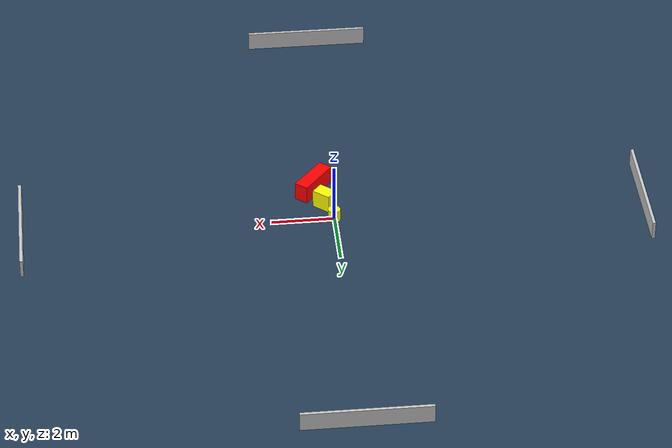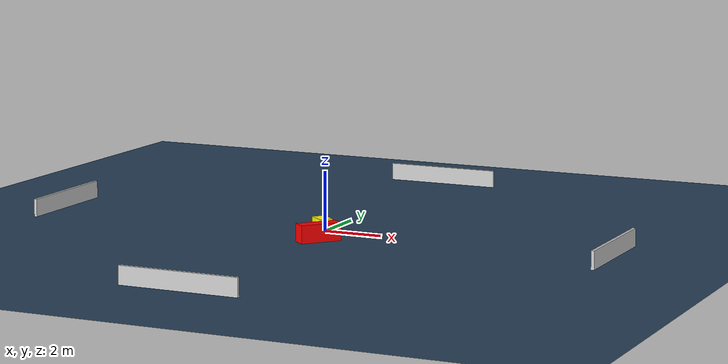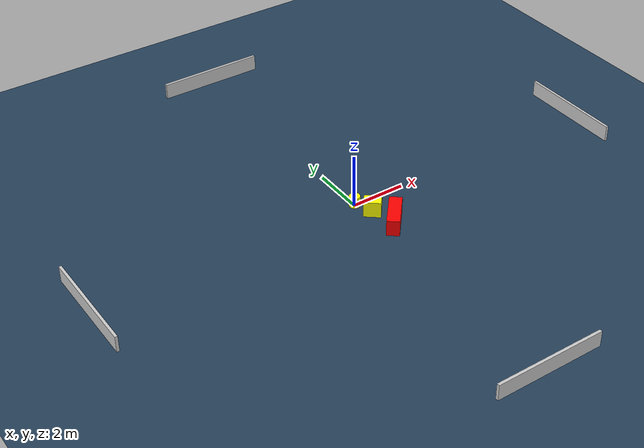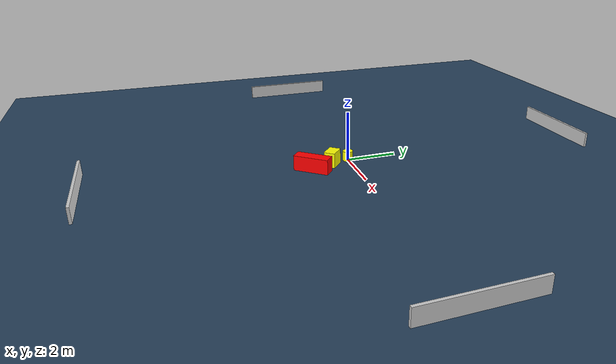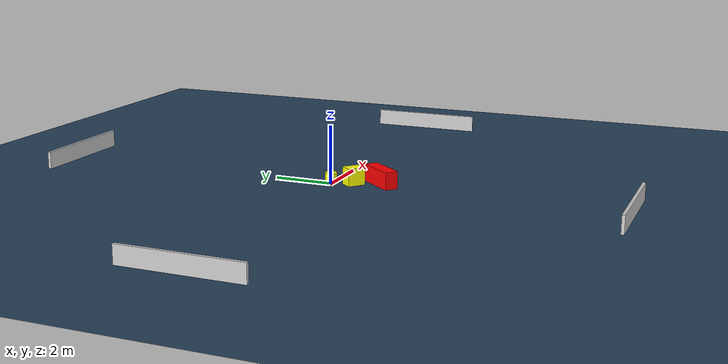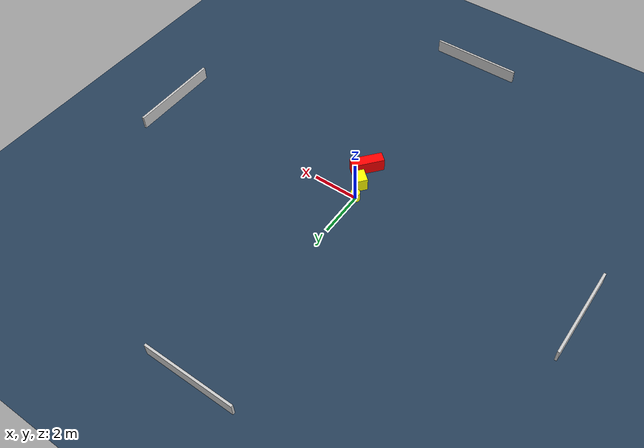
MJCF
<?xml version="1.0" ?>
<mujoco model="generated_environment">
  <option timestep="0.01" integrator="RK4" cone="elliptic"/>
  <default>
    <geom density="1"/>
  </default>
  <asset>
    <texture builtin="gradient" height="3072" name="skybox" rgb1="0.3 0.5 0.7" rgb2="0 0 0" type="skybox" width="512"/>
    <texture builtin="checker" height="300" name="groundplane" rgb1="0.2 0.3 0.4" rgb2="0.1 0.2 0.3" type="2d" width="300"/>
    <material name="groundplane" reflectance="0.2" texrepeat="5 5" texture="groundplane"/>
  </asset>
  <worldbody>
    <light dir="0 0 -1" directional="true" pos="0 0 1.5"/>
    <geom condim="3" friction="0.5 0.005 0.001" material="groundplane" name="floor" pos="0 0 0" size="0 0 0.05" type="plane"/>
    <body name="walls">
      <geom name="wall_1" condim="4" pos="-10.0 0.0 0.3" rgba="0.800000011920929 0.800000011920929 0.800000011920929 1.0" size="0.05 2.0 0.3" type="box"/>
      <geom name="wall_2" condim="4" pos="10.0 0.0 0.3" rgba="0.800000011920929 0.800000011920929 0.800000011920929 1.0" size="0.05 2.0 0.3" type="box"/>
      <geom name="wall_3" condim="4" pos="0.0 -10.0 0.3" rgba="0.800000011920929 0.800000011920929 0.800000011920929 1.0" size="2.0 0.05 0.3" type="box"/>
      <geom name="wall_4" condim="4" pos="0.0 10.0 0.3" rgba="0.800000011920929 0.800000011920929 0.800000011920929 1.0" size="2.0 0.05 0.3" type="box"/>
    </body>
    <body name="robot">
      <joint name="joint_x" type="slide" pos="0 0 0" axis="1 0 0"/>
      <joint name="joint_y" type="slide" pos="0 0 0" axis="0 1 0"/>
      <geom name="robot" type="cylinder" pos="0.0 0.0 0.2" size="0.2 0.2 0.0" mass="5.0" friction="1.0 0.005 0.0001" condim="4" rgba="1.0 1.0 0.0 1.0"/>
    </body>
    <body name="obstacle_1_movable">
      <geom name="obstacle_1_movable" condim="4" pos="0.23860556150127385 -0.7295784520321392 0.3" euler="0 0 230.12870149101067" friction="0.0 0.005 0.001" rgba="1.0 1.0 0.0 1.0" size="0.2214909433746908 0.30698224091052645 0.3" type="box" mass="0.1"/>
      <joint type="free"/>
    </body>
    <body name="obstacle_2_static">
      <geom name="obstacle_2_static" condim="4" pos="0.5222350904472156 -1.6091071849162284 0.3" euler="0 0 230.17979039563855" friction="0.0 0.005 0.001" rgba="1.0 0.0 0.0 1.0" size="0.7011413715985717 0.2287861083693843 0.3" type="box"/>
    </body>
  </worldbody>
  <actuator>
    <motor name="actuator_x" joint="joint_x" gear="1" ctrlrange="-1 1"/>
    <motor name="actuator_y" joint="joint_y" gear="1" ctrlrange="-1 1"/>
  </actuator>
</mujoco>
